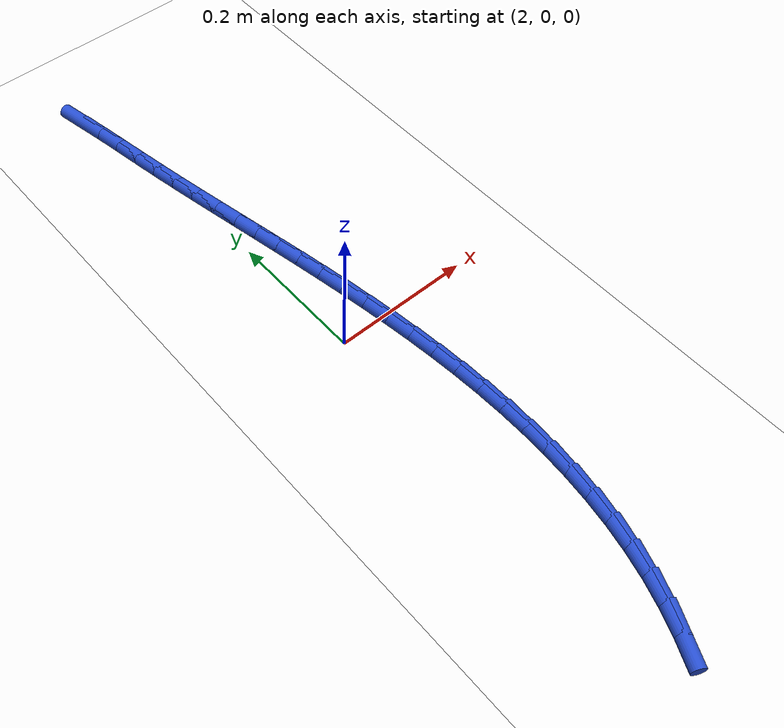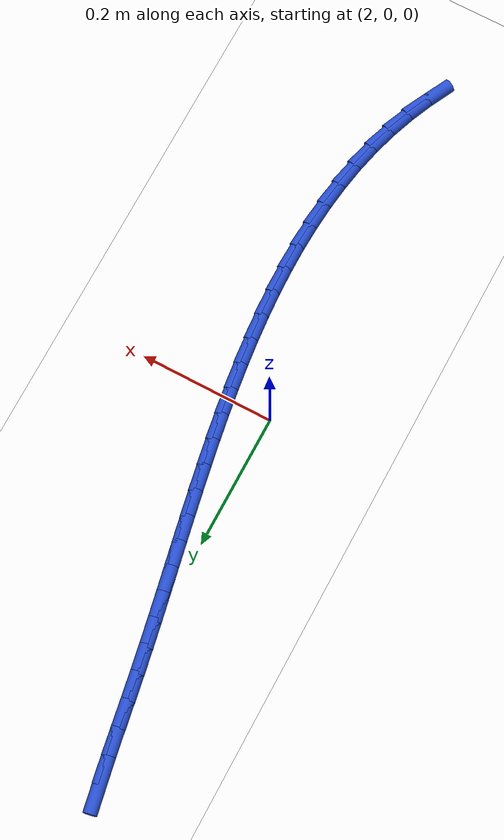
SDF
<sdf version="1.6">
 <world name="default">
  <model name="ground_plane">
   <static>1</static>
   <link name="link">
    <collision name="collision">
     <geometry><plane><normal>0 0 1</normal><size>100 100</size></plane></geometry>
     <surface><friction><ode><mu>100</mu><mu2>50</mu2></ode></friction></surface>
    </collision>
    <visual name="visual">
     <cast_shadows>0</cast_shadows>
     <geometry><plane><normal>0 0 1</normal><size>100 100</size></plane></geometry>
     <material>
      <script><uri>file://media/materials/scripts/gazebo.material</uri><name>Gazebo/WhiteGlow</name></script>
     </material>
    </visual>
   </link>
  </model>
  <model name="line">
   <link name="link_74">
    <pose>1.9616445560377045 0.5500902732022815 0.01 0 1.57 -1.3766236495050503</pose>
    <collision name="collision">
     <geometry><cylinder><radius>0.01</radius><length>0.08</length></cylinder></geometry>
    </collision>
    <visual name="visual">
     <material>
      <script><name>Gazebo/Blue</name><uri>file://media/materials/scripts/gazebo.material</uri></script>
     </material>
     <geometry><cylinder><radius>0.01</radius><length>0.08</length></cylinder></geometry>
    </visual>
   </link>
   <link name="link_75">
    <pose>1.9692744552328019 0.5112909565021825 0.01 0 1.57 -1.3923274051119814</pose>
    <collision name="collision">
     <geometry><cylinder><radius>0.01</radius><length>0.08</length></cylinder></geometry>
    </collision>
    <visual name="visual">
     <material>
      <script><name>Gazebo/Blue</name><uri>file://media/materials/scripts/gazebo.material</uri></script>
     </material>
     <geometry><cylinder><radius>0.01</radius><length>0.08</length></cylinder></geometry>
    </visual>
   </link>
   <link name="link_76">
    <pose>1.9762826667645124 0.47244023423851444 0.01 0 1.57 -1.3979387044781846</pose>
    <collision name="collision">
     <geometry><cylinder><radius>0.01</radius><length>0.08</length></cylinder></geometry>
    </collision>
    <visual name="visual">
     <material>
      <script><name>Gazebo/Blue</name><uri>file://media/materials/scripts/gazebo.material</uri></script>
     </material>
     <geometry><cylinder><radius>0.01</radius><length>0.08</length></cylinder></geometry>
    </visual>
   </link>
   <link name="link_77">
    <pose>1.9830143864430414 0.43388516060831445 0.01 0 1.57 -1.3935712095662527</pose>
    <collision name="collision">
     <geometry><cylinder><radius>0.01</radius><length>0.08</length></cylinder></geometry>
    </collision>
    <visual name="visual">
     <material>
      <script><name>Gazebo/Blue</name><uri>file://media/materials/scripts/gazebo.material</uri></script>
     </material>
     <geometry><cylinder><radius>0.01</radius><length>0.08</length></cylinder></geometry>
    </visual>
   </link>
   <link name="link_78">
    <pose>1.9898066831479977 0.3959614454997415 0.01 0 1.57 -1.3848058987437937</pose>
    <collision name="collision">
     <geometry><cylinder><radius>0.01</radius><length>0.08</length></cylinder></geometry>
    </collision>
    <visual name="visual">
     <material>
      <script><name>Gazebo/Blue</name><uri>file://media/materials/scripts/gazebo.material</uri></script>
     </material>
     <geometry><cylinder><radius>0.01</radius><length>0.08</length></cylinder></geometry>
    </visual>
   </link>
   <link name="link_79">
    <pose>1.996809726529554 0.3587439078577616 0.01 0 1.57 -1.3776598432863572</pose>
    <collision name="collision">
     <geometry><cylinder><radius>0.01</radius><length>0.08</length></cylinder></geometry>
    </collision>
    <visual name="visual">
     <material>
      <script><name>Gazebo/Blue</name><uri>file://media/materials/scripts/gazebo.material</uri></script>
     </material>
     <geometry><cylinder><radius>0.01</radius><length>0.08</length></cylinder></geometry>
    </visual>
   </link>
   <link name="link_80">
    <pose>2.003986798215658 0.3220464913281987 0.01 0 1.57 -1.372573026748038</pose>
    <collision name="collision">
     <geometry><cylinder><radius>0.01</radius><length>0.08</length></cylinder></geometry>
    </collision>
    <visual name="visual">
     <material>
      <script><name>Gazebo/Blue</name><uri>file://media/materials/scripts/gazebo.material</uri></script>
     </material>
     <geometry><cylinder><radius>0.01</radius><length>0.08</length></cylinder></geometry>
    </visual>
   </link>
   <link name="link_81">
    <pose>2.011293055145107 0.2856717983768093 0.01 0 1.57 -1.3696707258092908</pose>
    <collision name="collision">
     <geometry><cylinder><radius>0.01</radius><length>0.08</length></cylinder></geometry>
    </collision>
    <visual name="visual">
     <material>
      <script><name>Gazebo/Blue</name><uri>file://media/materials/scripts/gazebo.material</uri></script>
     </material>
     <geometry><cylinder><radius>0.01</radius><length>0.08</length></cylinder></geometry>
    </visual>
   </link>
   <link name="link_82">
    <pose>2.018683654256698 0.2494224314693489 0.01 0 1.57 -1.3690151377993818</pose>
    <collision name="collision">
     <geometry><cylinder><radius>0.01</radius><length>0.08</length></cylinder></geometry>
    </collision>
    <visual name="visual">
     <material>
      <script><name>Gazebo/Blue</name><uri>file://media/materials/scripts/gazebo.material</uri></script>
     </material>
     <geometry><cylinder><radius>0.01</radius><length>0.08</length></cylinder></geometry>
    </visual>
   </link>
   <link name="link_83">
    <pose>2.0261137524892283 0.2131009930715731 0.01 0 1.57 -1.3706018141863443</pose>
    <collision name="collision">
     <geometry><cylinder><radius>0.01</radius><length>0.08</length></cylinder></geometry>
    </collision>
    <visual name="visual">
     <material>
      <script><name>Gazebo/Blue</name><uri>file://media/materials/scripts/gazebo.material</uri></script>
     </material>
     <geometry><cylinder><radius>0.01</radius><length>0.08</length></cylinder></geometry>
    </visual>
   </link>
   <link name="link_84">
    <pose>2.0335385067785423 0.17651008565923454 0.01 0 1.57 -1.3744735034587647</pose>
    <collision name="collision">
     <geometry><cylinder><radius>0.01</radius><length>0.08</length></cylinder></geometry>
    </collision>
    <visual name="visual">
     <material>
      <script><name>Gazebo/Blue</name><uri>file://media/materials/scripts/gazebo.material</uri></script>
     </material>
     <geometry><cylinder><radius>0.01</radius><length>0.08</length></cylinder></geometry>
    </visual>
   </link>
   <link name="link_85">
    <pose>2.0408997732736074 0.13949733174236656 0.01 0 1.57 -1.380985036129335</pose>
    <collision name="collision">
     <geometry><cylinder><radius>0.01</radius><length>0.08</length></cylinder></geometry>
    </collision>
    <visual name="visual">
     <material>
      <script><name>Gazebo/Blue</name><uri>file://media/materials/scripts/gazebo.material</uri></script>
     </material>
     <geometry><cylinder><radius>0.01</radius><length>0.08</length></cylinder></geometry>
    </visual>
   </link>
   <link name="link_86">
    <pose>2.048087168485579 0.10208717271451374 0.01 0 1.57 -1.3902106341222915</pose>
    <collision name="collision">
     <geometry><cylinder><radius>0.01</radius><length>0.08</length></cylinder></geometry>
    </collision>
    <visual name="visual">
     <material>
      <script><name>Gazebo/Blue</name><uri>file://media/materials/scripts/gazebo.material</uri></script>
     </material>
     <geometry><cylinder><radius>0.01</radius><length>0.08</length></cylinder></geometry>
    </visual>
   </link>
   <link name="link_87">
    <pose>2.0549774855470124 0.06434745408880159 0.01 0 1.57 -1.402155833394586</pose>
    <collision name="collision">
     <geometry><cylinder><radius>0.01</radius><length>0.08</length></cylinder></geometry>
    </collision>
    <visual name="visual">
     <material>
      <script><name>Gazebo/Blue</name><uri>file://media/materials/scripts/gazebo.material</uri></script>
     </material>
     <geometry><cylinder><radius>0.01</radius><length>0.08</length></cylinder></geometry>
    </visual>
   </link>
   <link name="link_88">
    <pose>2.061447517590466 0.026346021378355677 0.01 0 1.57 -1.4168597650586177</pose>
    <collision name="collision">
     <geometry><cylinder><radius>0.01</radius><length>0.08</length></cylinder></geometry>
    </collision>
    <visual name="visual">
     <material>
      <script><name>Gazebo/Blue</name><uri>file://media/materials/scripts/gazebo.material</uri></script>
     </material>
     <geometry><cylinder><radius>0.01</radius><length>0.08</length></cylinder></geometry>
    </visual>
   </link>
   <link name="link_89">
    <pose>2.067374057748495 -0.01184927990369731 0.01 0 1.57 -1.434392395922009</pose>
    <collision name="collision">
     <geometry><cylinder><radius>0.01</radius><length>0.08</length></cylinder></geometry>
    </collision>
    <visual name="visual">
     <material>
      <script><name>Gazebo/Blue</name><uri>file://media/materials/scripts/gazebo.material</uri></script>
     </material>
     <geometry><cylinder><radius>0.01</radius><length>0.08</length></cylinder></geometry>
    </visual>
   </link>
   <link name="link_90">
    <pose>2.0726338991536557 -0.05017060424423188 0.01 0 1.57 -1.4548519382766725</pose>
    <collision name="collision">
     <geometry><cylinder><radius>0.01</radius><length>0.08</length></cylinder></geometry>
    </collision>
    <visual name="visual">
     <material>
      <script><name>Gazebo/Blue</name><uri>file://media/materials/scripts/gazebo.material</uri></script>
     </material>
     <geometry><cylinder><radius>0.01</radius><length>0.08</length></cylinder></geometry>
    </visual>
   </link>
   <link name="link_91">
    <pose>2.0771038349385047 -0.08855010613012214 0.01 0 1.57 -1.478362057065576</pose>
    <collision name="collision">
     <geometry><cylinder><radius>0.01</radius><length>0.08</length></cylinder></geometry>
    </collision>
    <visual name="visual">
     <material>
      <script><name>Gazebo/Blue</name><uri>file://media/materials/scripts/gazebo.material</uri></script>
     </material>
     <geometry><cylinder><radius>0.01</radius><length>0.08</length></cylinder></geometry>
    </visual>
   </link>
   <link name="link_92">
    <pose>2.0806606582355993 -0.12691994004824284 0.01 0 1.57 -1.5050684416330349</pose>
    <collision name="collision">
     <geometry><cylinder><radius>0.01</radius><length>0.08</length></cylinder></geometry>
    </collision>
    <visual name="visual">
     <material>
      <script><name>Gazebo/Blue</name><uri>file://media/materials/scripts/gazebo.material</uri></script>
     </material>
     <geometry><cylinder><radius>0.01</radius><length>0.08</length></cylinder></geometry>
    </visual>
   </link>
   <link name="link_93">
    <pose>2.083181162177495 -0.16521226048546656 0.01 0 1.57 -1.5351342278567448</pose>
    <collision name="collision">
     <geometry><cylinder><radius>0.01</radius><length>0.08</length></cylinder></geometry>
    </collision>
    <visual name="visual">
     <material>
      <script><name>Gazebo/Blue</name><uri>file://media/materials/scripts/gazebo.material</uri></script>
     </material>
     <geometry><cylinder><radius>0.01</radius><length>0.08</length></cylinder></geometry>
    </visual>
   </link>
   <link name="link_94">
    <pose>2.0845421398967487 -0.2033592219286682 0.01 0 1.57 -1.5687336648145733</pose>
    <collision name="collision">
     <geometry><cylinder><radius>0.01</radius><length>0.08</length></cylinder></geometry>
    </collision>
    <visual name="visual">
     <material>
      <script><name>Gazebo/Blue</name><uri>file://media/materials/scripts/gazebo.material</uri></script>
     </material>
     <geometry><cylinder><radius>0.01</radius><length>0.08</length></cylinder></geometry>
    </visual>
   </link>
   <link name="link_95">
    <pose>2.0846203845259175 -0.24129297886472192 0.01 0 1.57 1.5355493135015228</pose>
    <collision name="collision">
     <geometry><cylinder><radius>0.01</radius><length>0.08</length></cylinder></geometry>
    </collision>
    <visual name="visual">
     <material>
      <script><name>Gazebo/Blue</name><uri>file://media/materials/scripts/gazebo.material</uri></script>
     </material>
     <geometry><cylinder><radius>0.01</radius><length>0.08</length></cylinder></geometry>
    </visual>
   </link>
   <link name="link_96">
    <pose>2.083292689197557 -0.2789456857805016 0.01 0 1.57 1.4943624044121893</pose>
    <collision name="collision">
     <geometry><cylinder><radius>0.01</radius><length>0.08</length></cylinder></geometry>
    </collision>
    <visual name="visual">
     <material>
      <script><name>Gazebo/Blue</name><uri>file://media/materials/scripts/gazebo.material</uri></script>
     </material>
     <geometry><cylinder><radius>0.01</radius><length>0.08</length></cylinder></geometry>
    </visual>
   </link>
   <link name="link_97">
    <pose>2.080435847044224 -0.31624949716288153 0.01 0 1.57 1.4491565723511608</pose>
    <collision name="collision">
     <geometry><cylinder><radius>0.01</radius><length>0.08</length></cylinder></geometry>
    </collision>
    <visual name="visual">
     <material>
      <script><name>Gazebo/Blue</name><uri>file://media/materials/scripts/gazebo.material</uri></script>
     </material>
     <geometry><cylinder><radius>0.01</radius><length>0.08</length></cylinder></geometry>
    </visual>
   </link>
   <link name="link_98">
    <pose>2.0759266511984746 -0.3531365674987364 0.01 0 1.57 1.3998352687338307</pose>
    <collision name="collision">
     <geometry><cylinder><radius>0.01</radius><length>0.08</length></cylinder></geometry>
    </collision>
    <visual name="visual">
     <material>
      <script><name>Gazebo/Blue</name><uri>file://media/materials/scripts/gazebo.material</uri></script>
     </material>
     <geometry><cylinder><radius>0.01</radius><length>0.08</length></cylinder></geometry>
    </visual>
   </link>
   <link name="link_99">
    <pose>2.0696418947928663 -0.3895390512749388 0.01 0 1.57 1.3463707770386413</pose>
    <collision name="collision">
     <geometry><cylinder><radius>0.01</radius><length>0.08</length></cylinder></geometry>
    </collision>
    <visual name="visual">
     <material>
      <script><name>Gazebo/Blue</name><uri>file://media/materials/scripts/gazebo.material</uri></script>
     </material>
     <geometry><cylinder><radius>0.01</radius><length>0.08</length></cylinder></geometry>
    </visual>
   </link>
   <link name="link_100">
    <pose>2.061458370959955 -0.42538910297836374 0.01 0 1.57 1.2888305138795781</pose>
    <collision name="collision">
     <geometry><cylinder><radius>0.01</radius><length>0.08</length></cylinder></geometry>
    </collision>
    <visual name="visual">
     <material>
      <script><name>Gazebo/Blue</name><uri>file://media/materials/scripts/gazebo.material</uri></script>
     </material>
     <geometry><cylinder><radius>0.01</radius><length>0.08</length></cylinder></geometry>
    </visual>
   </link>
   <link name="link_101">
    <pose>2.0512528728322974 -0.46061887709588517 0.01 0 1.57 1.2274576967214703</pose>
    <collision name="collision">
     <geometry><cylinder><radius>0.01</radius><length>0.08</length></cylinder></geometry>
    </collision>
    <visual name="visual">
     <material>
      <script><name>Gazebo/Blue</name><uri>file://media/materials/scripts/gazebo.material</uri></script>
     </material>
     <geometry><cylinder><radius>0.01</radius><length>0.08</length></cylinder></geometry>
    </visual>
   </link>
   <link name="link_102">
    <pose>2.0389041055292685 -0.4951611032866791 0.01 0 1.57 1.165954389898391</pose>
    <collision name="collision">
     <geometry><cylinder><radius>0.01</radius><length>0.08</length></cylinder></geometry>
    </collision>
    <visual name="visual">
     <material>
      <script><name>Gazebo/Blue</name><uri>file://media/materials/scripts/gazebo.material</uri></script>
     </material>
     <geometry><cylinder><radius>0.01</radius><length>0.08</length></cylinder></geometry>
    </visual>
   </link>
   <link name="link_103">
    <pose>2.0244103653101533 -0.528984487143718 0.01 0 1.57 1.1098748235185218</pose>
    <collision name="collision">
     <geometry><cylinder><radius>0.01</radius><length>0.08</length></cylinder></geometry>
    </collision>
    <visual name="visual">
     <material>
      <script><name>Gazebo/Blue</name><uri>file://media/materials/scripts/gazebo.material</uri></script>
     </material>
     <geometry><cylinder><radius>0.01</radius><length>0.08</length></cylinder></geometry>
    </visual>
   </link>
  </model>
 </world>
</sdf>
